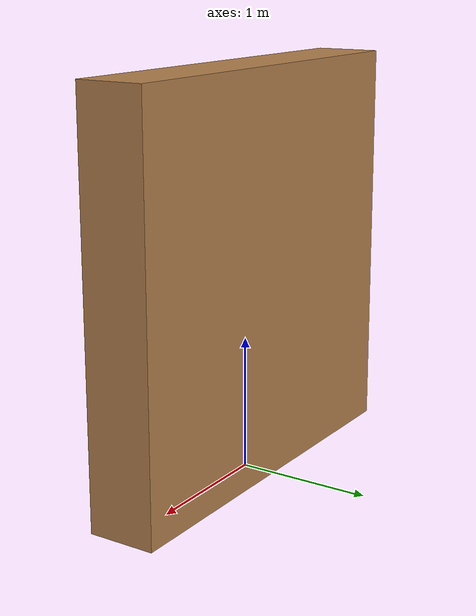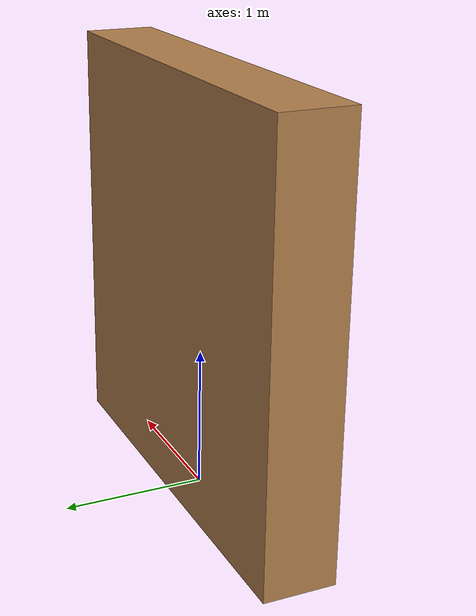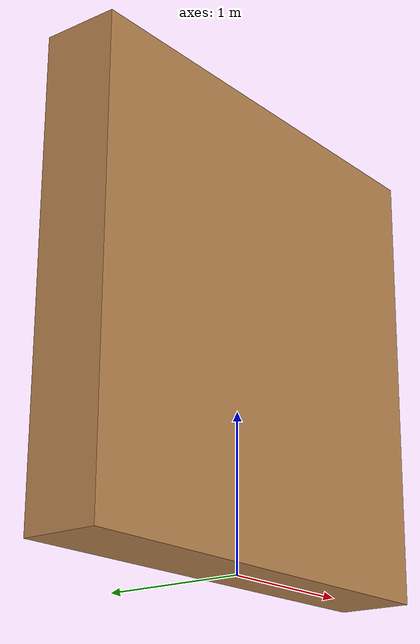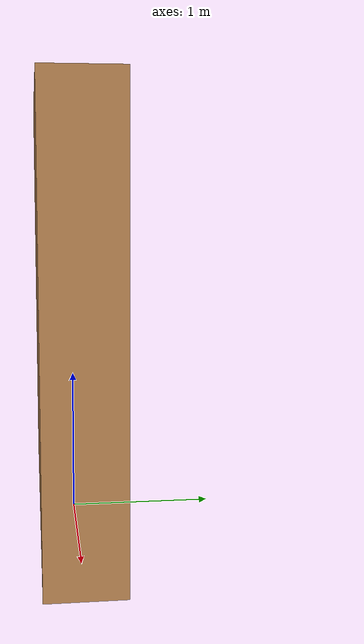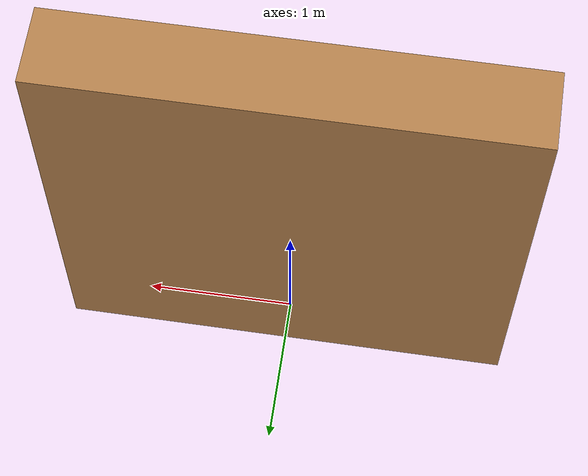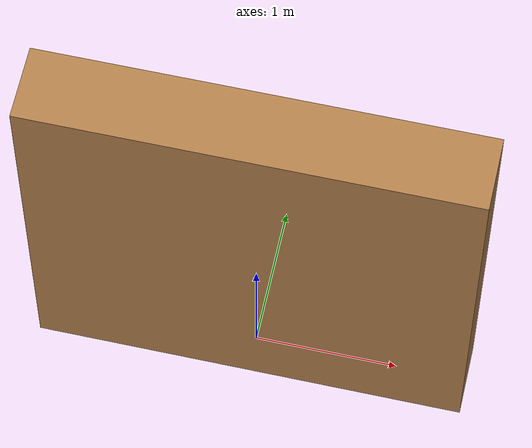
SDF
<?xml version="1.0" ?>
<sdf version="1.5">
  <model name="brick_box_3x1x3">
    <static>true</static>
    <link name="chassis">
      <pose>0 0 1.5 0 0 0</pose>
      <collision name="collision">
        <geometry>
          <box>
            <size>3.0 0.5 3.0</size>
          </box>
        </geometry>
      </collision>
      <visual name="visual">
        <geometry>
          <mesh>
            <uri>model://brick_box_3x1x3/meshes/simple_box.dae</uri>
            <scale>3.0 0.5 3.0</scale>
          </mesh>
        </geometry>
        <material>
          <diffuse>1.0 1.0 1.0</diffuse>
          <script>
            <uri>file://media/materials/scripts/gazebo.material</uri>
            <name>Gazebo/Wood</name>
          </script>
          <!-- PBR for Ignition, material scripts for gazebo classic-->
          <pbr>
            <metal>
              <albedo_map>model://brick_box_3x1x3/materials/textures/simple_box.png</albedo_map>
            </metal>
          </pbr>
        </material>
      </visual>
    </link>
  </model>
</sdf>
